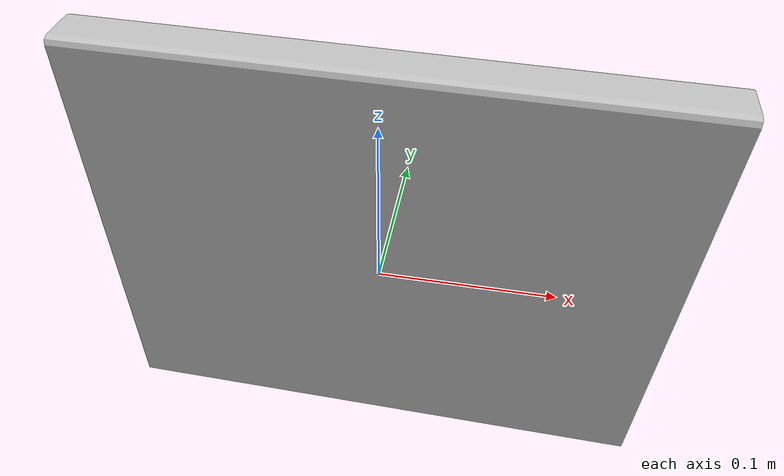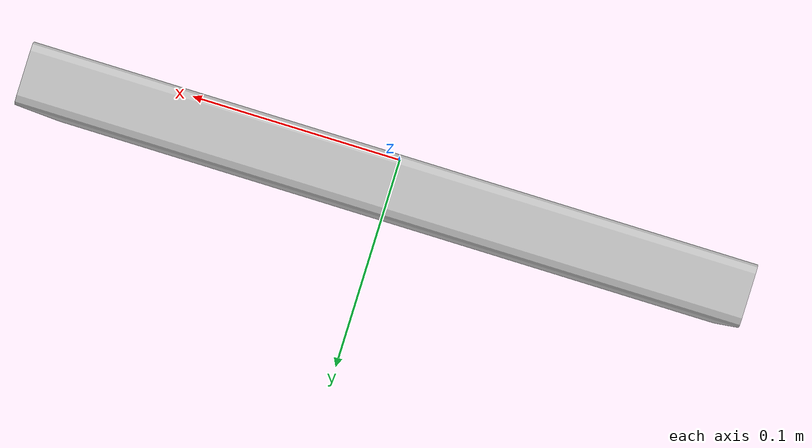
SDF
<?xml version="1.0" ?>
<sdf version="1.4">
  <model name="shelf3_artbook_german">
    <link name="body">
      <pose>0 0 0 0 0 0</pose>
      <inertial>
        <pose>  -0.000014   0.014000   0.000677 0 0 0</pose>
        <mass>0.5</mass>
        <inertia>
          <ixx>0.01</ixx>
          <ixy>0</ixy>
          <ixz>0</ixz>
          <iyy>0.01</iyy>
          <iyz>0</iyz>
          <izz>0.01</izz>
        </inertia>
      </inertial>
      <collision name="collision">
        <pose>  -0.000014   0.014000   0.000677 0 0 0</pose>
        <geometry>
          <box><size>0.337469 0.028860 0.264772</size></box>
        </geometry>
      </collision>
      <visual name="visual">
        <geometry>
          <mesh>
            <uri>model://bookshelf/shelf3_items/artbook_german/artbook_german.dae</uri>
          </mesh>
        </geometry>
      </visual>
    </link>
  </model>
</sdf>
